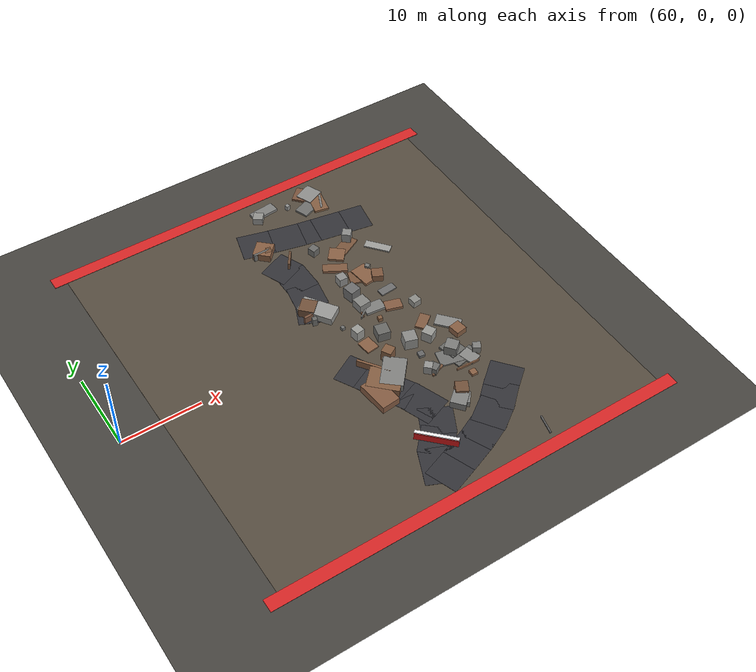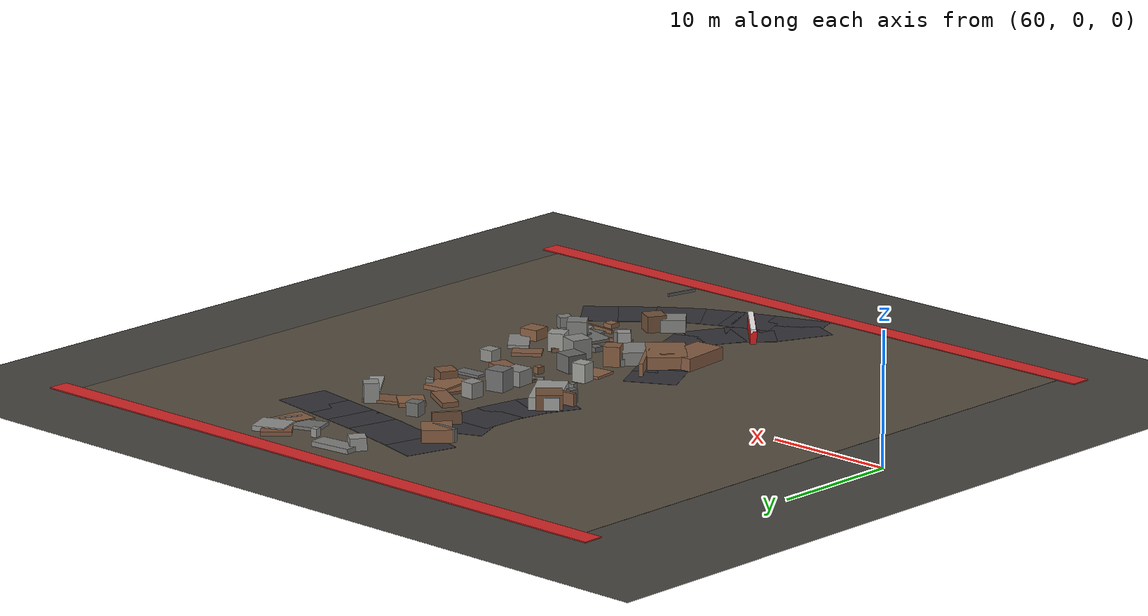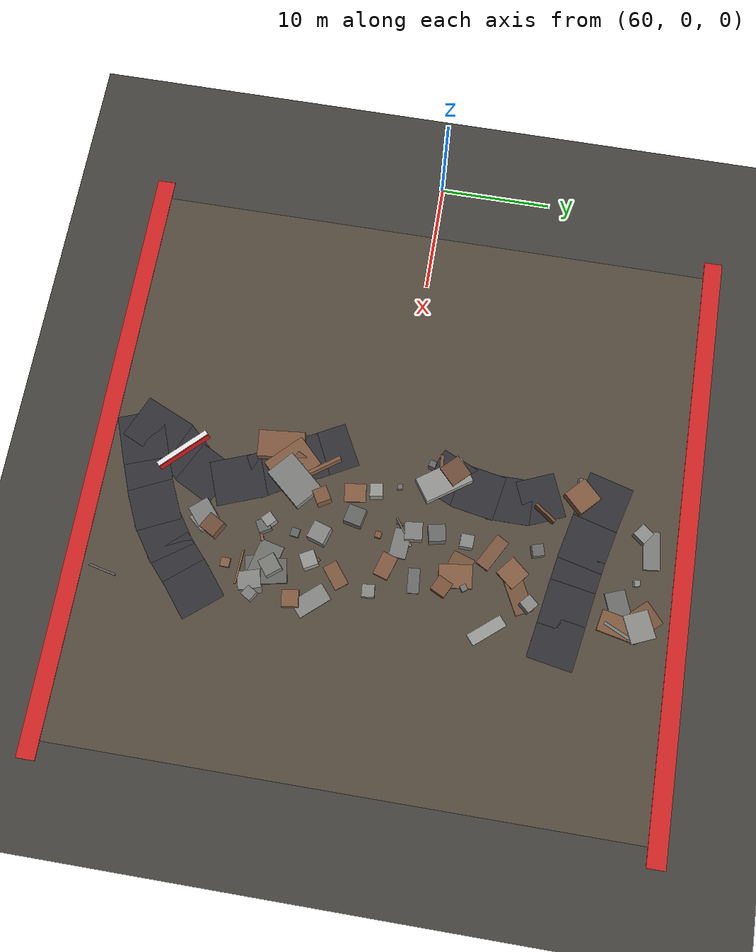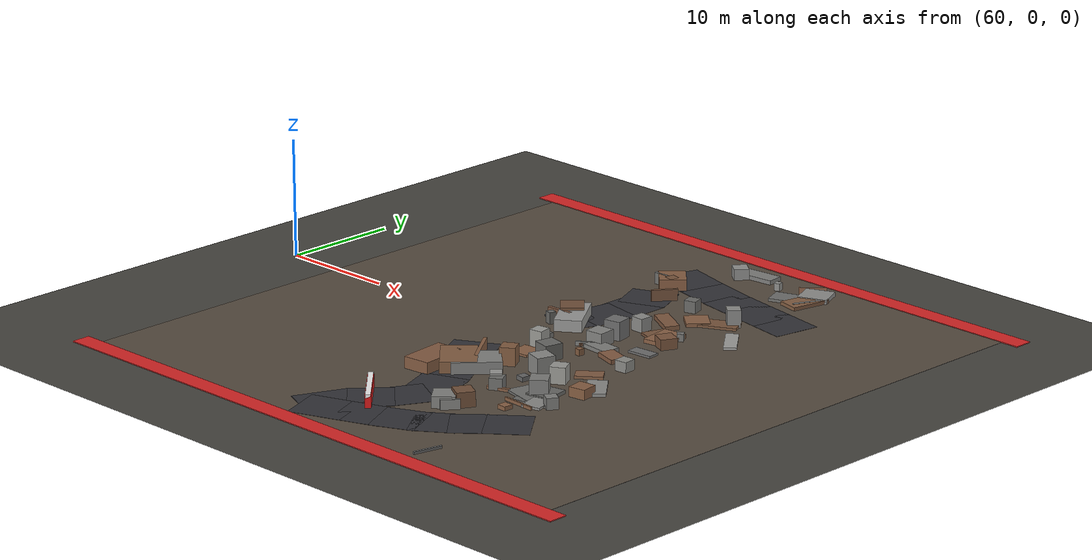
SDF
<sdf version="1.6">
 <world name="navitas_arena">
  <model name="ground_plane">
   <static>true</static>
   <link name="link">
    <collision name="collision">
     <geometry><plane><normal>0 0 1</normal><size>400 400</size></plane></geometry>
     <surface><friction><ode><mu>0.820</mu><mu2>0.820</mu2></ode></friction></surface>
    </collision>
    <visual name="visual">
     <cast_shadows>false</cast_shadows>
     <geometry><plane><normal>0 0 1</normal><size>400 400</size></plane></geometry>
     <material><ambient>0.280 0.270 0.250 1</ambient><diffuse>0.280 0.270 0.250 1</diffuse></material>
    </visual>
   </link>
  </model>
  <model name="gd_zor">
   <static>true</static>
   <pose>90.000 0.000 0.010 0 0 0.000</pose>
   <link name="link">
    <collision name="col"><geometry><box><size>50.000 50.000 0.020</size></box></geometry></collision>
    <visual name="vis">
     <geometry><box><size>50.000 50.000 0.020</size></box></geometry>
     <material><ambient>0.34 0.30 0.25 1</ambient><diffuse>0.34 0.30 0.25 1</diffuse></material>
    </visual>
   </link>
  </model>
  <model name="brd_zor_N">
   <static>true</static>
   <pose>90.000 25.800 0.040 0 0 0.000</pose>
   <link name="link">
    <collision name="col"><geometry><box><size>53.200 1.600 0.080</size></box></geometry></collision>
    <visual name="vis">
     <geometry><box><size>53.200 1.600 0.080</size></box></geometry>
     <material><ambient>0.85 0.15 0.15 1</ambient><diffuse>0.85 0.15 0.15 1</diffuse></material>
    </visual>
   </link>
  </model>
  <model name="brd_zor_S">
   <static>true</static>
   <pose>90.000 -25.800 0.040 0 0 0.000</pose>
   <link name="link">
    <collision name="col"><geometry><box><size>53.200 1.600 0.080</size></box></geometry></collision>
    <visual name="vis">
     <geometry><box><size>53.200 1.600 0.080</size></box></geometry>
     <material><ambient>0.85 0.15 0.15 1</ambient><diffuse>0.85 0.15 0.15 1</diffuse></material>
    </visual>
   </link>
  </model>
  <model name="road_zor_2_0">
   <static>true</static>
   <pose>87.388 -21.250 0.040 0 0 1.162</pose>
   <link name="link">
    <collision name="col"><geometry><box><size>4.714 4.000 0.020</size></box></geometry></collision>
    <visual name="vis">
     <geometry><box><size>4.714 4.000 0.020</size></box></geometry>
     <material><ambient>0.20 0.20 0.22 1</ambient><diffuse>0.20 0.20 0.22 1</diffuse></material>
    </visual>
   </link>
  </model>
  <model name="road_zor_2_1">
   <static>true</static>
   <pose>89.083 -18.484 0.040 0 0 0.826</pose>
   <link name="link">
    <collision name="col"><geometry><box><size>3.663 4.000 0.020</size></box></geometry></collision>
    <visual name="vis">
     <geometry><box><size>3.663 4.000 0.020</size></box></geometry>
     <material><ambient>0.20 0.20 0.22 1</ambient><diffuse>0.20 0.20 0.22 1</diffuse></material>
    </visual>
   </link>
  </model>
  <model name="road_zor_2_2">
   <static>true</static>
   <pose>90.655 -16.234 0.040 0 0 1.096</pose>
   <link name="link">
    <collision name="col"><geometry><box><size>3.676 4.000 0.020</size></box></geometry></collision>
    <visual name="vis">
     <geometry><box><size>3.676 4.000 0.020</size></box></geometry>
     <material><ambient>0.20 0.20 0.22 1</ambient><diffuse>0.20 0.20 0.22 1</diffuse></material>
    </visual>
   </link>
  </model>
  <model name="road_zor_2_3">
   <static>true</static>
   <pose>90.652 -13.328 0.040 0 0 1.935</pose>
   <link name="link">
    <collision name="col"><geometry><box><size>4.479 4.000 0.020</size></box></geometry></collision>
    <visual name="vis">
     <geometry><box><size>4.479 4.000 0.020</size></box></geometry>
     <material><ambient>0.20 0.20 0.22 1</ambient><diffuse>0.20 0.20 0.22 1</diffuse></material>
    </visual>
   </link>
  </model>
  <model name="road_zor_2_4">
   <static>true</static>
   <pose>89.301 -10.426 0.040 0 0 2.096</pose>
   <link name="link">
    <collision name="col"><geometry><box><size>3.745 4.000 0.020</size></box></geometry></collision>
    <visual name="vis">
     <geometry><box><size>3.745 4.000 0.020</size></box></geometry>
     <material><ambient>0.20 0.20 0.22 1</ambient><diffuse>0.20 0.20 0.22 1</diffuse></material>
    </visual>
   </link>
  </model>
  <model name="road_zor_2_5">
   <static>true</static>
   <pose>88.001 -8.014 0.040 0 0 2.031</pose>
   <link name="link">
    <collision name="col"><geometry><box><size>3.537 4.000 0.020</size></box></geometry></collision>
    <visual name="vis">
     <geometry><box><size>3.537 4.000 0.020</size></box></geometry>
     <material><ambient>0.20 0.20 0.22 1</ambient><diffuse>0.20 0.20 0.22 1</diffuse></material>
    </visual>
   </link>
  </model>
  <model name="road_zor_2_6">
   <static>true</static>
   <pose>86.785 -5.667 0.040 0 0 2.066</pose>
   <link name="link">
    <collision name="col"><geometry><box><size>3.551 4.000 0.020</size></box></geometry></collision>
    <visual name="vis">
     <geometry><box><size>3.551 4.000 0.020</size></box></geometry>
     <material><ambient>0.20 0.20 0.22 1</ambient><diffuse>0.20 0.20 0.22 1</diffuse></material>
    </visual>
   </link>
  </model>
  <model name="road_zor_2_10">
   <static>true</static>
   <pose>87.604 4.833 0.040 0 0 1.163</pose>
   <link name="link">
    <collision name="col"><geometry><box><size>3.442 4.000 0.020</size></box></geometry></collision>
    <visual name="vis">
     <geometry><box><size>3.442 4.000 0.020</size></box></geometry>
     <material><ambient>0.20 0.20 0.22 1</ambient><diffuse>0.20 0.20 0.22 1</diffuse></material>
    </visual>
   </link>
  </model>
  <model name="road_zor_2_11">
   <static>true</static>
   <pose>88.367 7.460 0.040 0 0 1.395</pose>
   <link name="link">
    <collision name="col"><geometry><box><size>3.865 4.000 0.020</size></box></geometry></collision>
    <visual name="vis">
     <geometry><box><size>3.865 4.000 0.020</size></box></geometry>
     <material><ambient>0.20 0.20 0.22 1</ambient><diffuse>0.20 0.20 0.22 1</diffuse></material>
    </visual>
   </link>
  </model>
  <model name="road_zor_2_12">
   <static>true</static>
   <pose>88.623 10.340 0.040 0 0 1.572</pose>
   <link name="link">
    <collision name="col"><geometry><box><size>3.740 4.000 0.020</size></box></geometry></collision>
    <visual name="vis">
     <geometry><box><size>3.740 4.000 0.020</size></box></geometry>
     <material><ambient>0.20 0.20 0.22 1</ambient><diffuse>0.20 0.20 0.22 1</diffuse></material>
    </visual>
   </link>
  </model>
  <model name="road_zor_2_13">
   <static>true</static>
   <pose>88.135 12.918 0.040 0 0 1.969</pose>
   <link name="link">
    <collision name="col"><geometry><box><size>3.412 4.000 0.020</size></box></geometry></collision>
    <visual name="vis">
     <geometry><box><size>3.412 4.000 0.020</size></box></geometry>
     <material><ambient>0.20 0.20 0.22 1</ambient><diffuse>0.20 0.20 0.22 1</diffuse></material>
    </visual>
   </link>
  </model>
  <model name="road_zor_3_0">
   <static>true</static>
   <pose>88.276 -22.399 0.040 0 0 0.350</pose>
   <link name="link">
    <collision name="col"><geometry><box><size>4.405 4.000 0.020</size></box></geometry></collision>
    <visual name="vis">
     <geometry><box><size>4.405 4.000 0.020</size></box></geometry>
     <material><ambient>0.20 0.20 0.22 1</ambient><diffuse>0.20 0.20 0.22 1</diffuse></material>
    </visual>
   </link>
  </model>
  <model name="road_zor_3_1">
   <static>true</static>
   <pose>91.378 -21.236 0.040 0 0 0.368</pose>
   <link name="link">
    <collision name="col"><geometry><box><size>4.020 4.000 0.020</size></box></geometry></collision>
    <visual name="vis">
     <geometry><box><size>4.020 4.000 0.020</size></box></geometry>
     <material><ambient>0.20 0.20 0.22 1</ambient><diffuse>0.20 0.20 0.22 1</diffuse></material>
    </visual>
   </link>
  </model>
  <model name="road_zor_3_2">
   <static>true</static>
   <pose>94.090 -20.087 0.040 0 0 0.437</pose>
   <link name="link">
    <collision name="col"><geometry><box><size>3.674 4.000 0.020</size></box></geometry></collision>
    <visual name="vis">
     <geometry><box><size>3.674 4.000 0.020</size></box></geometry>
     <material><ambient>0.20 0.20 0.22 1</ambient><diffuse>0.20 0.20 0.22 1</diffuse></material>
    </visual>
   </link>
  </model>
  <model name="road_zor_3_3">
   <static>true</static>
   <pose>96.500 -18.696 0.040 0 0 0.609</pose>
   <link name="link">
    <collision name="col"><geometry><box><size>3.713 4.000 0.020</size></box></geometry></collision>
    <visual name="vis">
     <geometry><box><size>3.713 4.000 0.020</size></box></geometry>
     <material><ambient>0.20 0.20 0.22 1</ambient><diffuse>0.20 0.20 0.22 1</diffuse></material>
    </visual>
   </link>
  </model>
  <model name="road_zor_3_4">
   <static>true</static>
   <pose>98.651 -16.984 0.040 0 0 0.739</pose>
   <link name="link">
    <collision name="col"><geometry><box><size>3.596 4.000 0.020</size></box></geometry></collision>
    <visual name="vis">
     <geometry><box><size>3.596 4.000 0.020</size></box></geometry>
     <material><ambient>0.20 0.20 0.22 1</ambient><diffuse>0.20 0.20 0.22 1</diffuse></material>
    </visual>
   </link>
  </model>
  <model name="road_zor_3_5">
   <static>true</static>
   <pose>100.713 -15.204 0.040 0 0 0.686</pose>
   <link name="link">
    <collision name="col"><geometry><box><size>3.654 4.000 0.020</size></box></geometry></collision>
    <visual name="vis">
     <geometry><box><size>3.654 4.000 0.020</size></box></geometry>
     <material><ambient>0.20 0.20 0.22 1</ambient><diffuse>0.20 0.20 0.22 1</diffuse></material>
    </visual>
   </link>
  </model>
  <model name="road_zor_3_22">
   <static>true</static>
   <pose>100.116 15.732 0.040 0 0 2.968</pose>
   <link name="link">
    <collision name="col"><geometry><box><size>3.954 4.000 0.020</size></box></geometry></collision>
    <visual name="vis">
     <geometry><box><size>3.954 4.000 0.020</size></box></geometry>
     <material><ambient>0.20 0.20 0.22 1</ambient><diffuse>0.20 0.20 0.22 1</diffuse></material>
    </visual>
   </link>
  </model>
  <model name="road_zor_3_23">
   <static>true</static>
   <pose>97.126 16.250 0.040 0 0 2.972</pose>
   <link name="link">
    <collision name="col"><geometry><box><size>3.914 4.000 0.020</size></box></geometry></collision>
    <visual name="vis">
     <geometry><box><size>3.914 4.000 0.020</size></box></geometry>
     <material><ambient>0.20 0.20 0.22 1</ambient><diffuse>0.20 0.20 0.22 1</diffuse></material>
    </visual>
   </link>
  </model>
  <model name="road_zor_3_24">
   <static>true</static>
   <pose>94.276 16.753 0.040 0 0 2.961</pose>
   <link name="link">
    <collision name="col"><geometry><box><size>3.675 4.000 0.020</size></box></geometry></collision>
    <visual name="vis">
     <geometry><box><size>3.675 4.000 0.020</size></box></geometry>
     <material><ambient>0.20 0.20 0.22 1</ambient><diffuse>0.20 0.20 0.22 1</diffuse></material>
    </visual>
   </link>
  </model>
  <model name="road_zor_3_25">
   <static>true</static>
   <pose>90.976 17.454 0.040 0 0 2.912</pose>
   <link name="link">
    <collision name="col"><geometry><box><size>4.876 4.000 0.020</size></box></geometry></collision>
    <visual name="vis">
     <geometry><box><size>4.876 4.000 0.020</size></box></geometry>
     <material><ambient>0.20 0.20 0.22 1</ambient><diffuse>0.20 0.20 0.22 1</diffuse></material>
    </visual>
   </link>
  </model>
  <model name="road_zor_3_26">
   <static>true</static>
   <pose>87.501 18.320 0.040 0 0 2.879</pose>
   <link name="link">
    <collision name="col"><geometry><box><size>4.087 4.000 0.020</size></box></geometry></collision>
    <visual name="vis">
     <geometry><box><size>4.087 4.000 0.020</size></box></geometry>
     <material><ambient>0.20 0.20 0.22 1</ambient><diffuse>0.20 0.20 0.22 1</diffuse></material>
    </visual>
   </link>
  </model>
  <model name="bar_zor_2">
   <static>true</static>
   <pose>88.969 -18.504 0.500 0 0 2.349</pose>
   <link name="link">
    <collision name="col"><geometry><box><size>5.000 0.500 1.000</size></box></geometry></collision>
    <visual name="vis">
     <geometry><box><size>5.000 0.500 1.000</size></box></geometry>
     <material><ambient>0.85 0.10 0.10 1</ambient><diffuse>0.85 0.10 0.10 1</diffuse></material>
    </visual>
   </link>
  </model>
  <model name="bar_zor_2b">
   <static>true</static>
   <pose>88.969 -18.504 1.000 0 0 2.349</pose>
   <link name="link">
    <collision name="col"><geometry><box><size>5.000 0.400 0.300</size></box></geometry></collision>
    <visual name="vis">
     <geometry><box><size>5.000 0.400 0.300</size></box></geometry>
     <material><ambient>0.95 0.95 0.95 1</ambient><diffuse>0.95 0.95 0.95 1</diffuse></material>
    </visual>
   </link>
  </model>
  <model name="blk_zor_2_0_0">
   <static>true</static>
   <pose>88.708 -6.496 0.500 0 0 2.193</pose>
   <link name="link">
    <collision name="col"><geometry><box><size>4.124 0.293 1.000</size></box></geometry></collision>
    <visual name="vis">
     <geometry><box><size>4.124 0.293 1.000</size></box></geometry>
     <material><ambient>0.53 0.37 0.26 1</ambient><diffuse>0.53 0.37 0.26 1</diffuse></material>
    </visual>
   </link>
  </model>
  <model name="blk_zor_2_0_1">
   <static>true</static>
   <pose>87.156 -10.124 0.500 0 0 1.669</pose>
   <link name="link">
    <collision name="col"><geometry><box><size>4.038 2.355 1.000</size></box></geometry></collision>
    <visual name="vis">
     <geometry><box><size>4.038 2.355 1.000</size></box></geometry>
     <material><ambient>0.52 0.36 0.26 1</ambient><diffuse>0.52 0.36 0.26 1</diffuse></material>
    </visual>
   </link>
  </model>
  <model name="blk_zor_2_0_2">
   <static>true</static>
   <pose>88.221 -8.277 0.500 0 0 1.086</pose>
   <link name="link">
    <collision name="col"><geometry><box><size>1.007 1.007 1.000</size></box></geometry></collision>
    <visual name="vis">
     <geometry><box><size>1.007 1.007 1.000</size></box></geometry>
     <material><ambient>0.47 0.33 0.24 1</ambient><diffuse>0.47 0.33 0.24 1</diffuse></material>
    </visual>
   </link>
  </model>
  <model name="blk_zor_2_0_4">
   <static>true</static>
   <pose>88.682 -8.815 0.500 0 0 2.360</pose>
   <link name="link">
    <collision name="col"><geometry><box><size>3.917 2.961 1.000</size></box></geometry></collision>
    <visual name="vis">
     <geometry><box><size>3.917 2.961 1.000</size></box></geometry>
     <material><ambient>0.52 0.37 0.26 1</ambient><diffuse>0.52 0.37 0.26 1</diffuse></material>
    </visual>
   </link>
  </model>
  <model name="blk_zor_2_0_5">
   <static>true</static>
   <pose>90.123 -8.393 0.500 0 0 0.860</pose>
   <link name="link">
    <collision name="col"><geometry><box><size>4.031 2.732 1.000</size></box></geometry></collision>
    <visual name="vis">
     <geometry><box><size>4.031 2.732 1.000</size></box></geometry>
     <material><ambient>0.51 0.51 0.50 1</ambient><diffuse>0.51 0.51 0.50 1</diffuse></material>
    </visual>
   </link>
  </model>
  <model name="blk_zor_2_1_0">
   <static>true</static>
   <pose>86.965 3.977 0.500 0 0 0.073</pose>
   <link name="link">
    <collision name="col"><geometry><box><size>2.289 0.299 1.000</size></box></geometry></collision>
    <visual name="vis">
     <geometry><box><size>2.289 0.299 1.000</size></box></geometry>
     <material><ambient>0.49 0.34 0.25 1</ambient><diffuse>0.49 0.34 0.25 1</diffuse></material>
    </visual>
   </link>
  </model>
  <model name="blk_zor_2_1_2">
   <static>true</static>
   <pose>87.992 4.382 0.500 0 0 2.177</pose>
   <link name="link">
    <collision name="col"><geometry><box><size>4.432 2.261 1.000</size></box></geometry></collision>
    <visual name="vis">
     <geometry><box><size>4.432 2.261 1.000</size></box></geometry>
     <material><ambient>0.60 0.60 0.59 1</ambient><diffuse>0.60 0.60 0.59 1</diffuse></material>
    </visual>
   </link>
  </model>
  <model name="blk_zor_2_1_3">
   <static>true</static>
   <pose>86.779 3.173 0.500 0 0 1.304</pose>
   <link name="link">
    <collision name="col"><geometry><box><size>0.591 0.591 1.000</size></box></geometry></collision>
    <visual name="vis">
     <geometry><box><size>0.591 0.591 1.000</size></box></geometry>
     <material><ambient>0.41 0.41 0.40 1</ambient><diffuse>0.41 0.41 0.40 1</diffuse></material>
    </visual>
   </link>
  </model>
  <model name="blk_zor_2_1_5">
   <static>true</static>
   <pose>87.123 5.221 0.588 0 0 2.346</pose>
   <link name="link">
    <collision name="col"><geometry><box><size>1.936 1.936 1.175</size></box></geometry></collision>
    <visual name="vis">
     <geometry><box><size>1.936 1.936 1.175</size></box></geometry>
     <material><ambient>0.45 0.32 0.23 1</ambient><diffuse>0.45 0.32 0.23 1</diffuse></material>
    </visual>
   </link>
  </model>
  <model name="blk_zor_2_2_0">
   <static>true</static>
   <pose>89.451 13.382 0.500 0 0 0.956</pose>
   <link name="link">
    <collision name="col"><geometry><box><size>2.170 0.260 1.000</size></box></geometry></collision>
    <visual name="vis">
     <geometry><box><size>2.170 0.260 1.000</size></box></geometry>
     <material><ambient>0.45 0.32 0.23 1</ambient><diffuse>0.45 0.32 0.23 1</diffuse></material>
    </visual>
   </link>
  </model>
  <model name="blk_zor_2_2_2">
   <static>true</static>
   <pose>87.089 15.997 0.500 0 0 3.108</pose>
   <link name="link">
    <collision name="col"><geometry><box><size>2.279 0.272 1.000</size></box></geometry></collision>
    <visual name="vis">
     <geometry><box><size>2.279 0.272 1.000</size></box></geometry>
     <material><ambient>0.44 0.44 0.43 1</ambient><diffuse>0.44 0.44 0.43 1</diffuse></material>
    </visual>
   </link>
  </model>
  <model name="blk_zor_2_2_3">
   <static>true</static>
   <pose>87.500 16.364 0.500 0 0 0.802</pose>
   <link name="link">
    <collision name="col"><geometry><box><size>2.229 2.229 1.000</size></box></geometry></collision>
    <visual name="vis">
     <geometry><box><size>2.229 2.229 1.000</size></box></geometry>
     <material><ambient>0.53 0.37 0.26 1</ambient><diffuse>0.53 0.37 0.26 1</diffuse></material>
    </visual>
   </link>
  </model>
  <model name="blk_zor_2_2_4">
   <static>true</static>
   <pose>87.836 15.949 0.500 0 0 1.366</pose>
   <link name="link">
    <collision name="col"><geometry><box><size>0.851 0.851 1.000</size></box></geometry></collision>
    <visual name="vis">
     <geometry><box><size>0.851 0.851 1.000</size></box></geometry>
     <material><ambient>0.48 0.34 0.24 1</ambient><diffuse>0.48 0.34 0.24 1</diffuse></material>
    </visual>
   </link>
  </model>
  <model name="deb_zor_7">
   <static>true</static>
   <pose>96.589 20.634 0.134 0 0 0.360</pose>
   <link name="link">
    <collision name="col"><geometry><box><size>3.163 1.781 0.269</size></box></geometry></collision>
    <visual name="vis">
     <geometry><box><size>3.163 1.781 0.269</size></box></geometry>
     <material><ambient>0.44 0.44 0.43 1</ambient><diffuse>0.44 0.44 0.43 1</diffuse></material>
    </visual>
   </link>
  </model>
  <model name="deb_zor_18">
   <static>true</static>
   <pose>97.160 5.544 0.458 0 0 1.114</pose>
   <link name="link">
    <collision name="col"><geometry><box><size>1.382 1.382 0.916</size></box></geometry></collision>
    <visual name="vis">
     <geometry><box><size>1.382 1.382 0.916</size></box></geometry>
     <material><ambient>0.49 0.34 0.24 1</ambient><diffuse>0.49 0.34 0.24 1</diffuse></material>
    </visual>
   </link>
  </model>
  <model name="deb_zor_19">
   <static>true</static>
   <pose>100.113 9.849 0.109 0 0 2.262</pose>
   <link name="link">
    <collision name="col"><geometry><box><size>3.307 1.054 0.217</size></box></geometry></collision>
    <visual name="vis">
     <geometry><box><size>3.307 1.054 0.217</size></box></geometry>
     <material><ambient>0.62 0.62 0.61 1</ambient><diffuse>0.62 0.62 0.61 1</diffuse></material>
    </visual>
   </link>
  </model>
  <model name="deb_zor_20">
   <static>true</static>
   <pose>92.816 4.458 0.799 0 0 1.767</pose>
   <link name="link">
    <collision name="col"><geometry><box><size>1.453 1.453 1.598</size></box></geometry></collision>
    <visual name="vis">
     <geometry><box><size>1.453 1.453 1.598</size></box></geometry>
     <material><ambient>0.43 0.43 0.43 1</ambient><diffuse>0.43 0.43 0.43 1</diffuse></material>
    </visual>
   </link>
  </model>
  <model name="deb_zor_23">
   <static>true</static>
   <pose>100.361 -10.354 0.487 0 0 1.019</pose>
   <link name="link">
    <collision name="col"><geometry><box><size>0.955 0.955 0.974</size></box></geometry></collision>
    <visual name="vis">
     <geometry><box><size>0.955 0.955 0.974</size></box></geometry>
     <material><ambient>0.50 0.50 0.49 1</ambient><diffuse>0.50 0.50 0.49 1</diffuse></material>
    </visual>
   </link>
  </model>
  <model name="deb_zor_35">
   <static>true</static>
   <pose>94.988 11.348 0.164 0 0 0.874</pose>
   <link name="link">
    <collision name="col"><geometry><box><size>1.968 1.990 0.328</size></box></geometry></collision>
    <visual name="vis">
     <geometry><box><size>1.968 1.990 0.328</size></box></geometry>
     <material><ambient>0.54 0.38 0.27 1</ambient><diffuse>0.54 0.38 0.27 1</diffuse></material>
    </visual>
   </link>
  </model>
  <model name="deb_zor_43">
   <static>true</static>
   <pose>98.639 -10.390 0.100 0 0 0.204</pose>
   <link name="link">
    <collision name="col"><geometry><box><size>3.264 1.397 0.201</size></box></geometry></collision>
    <visual name="vis">
     <geometry><box><size>3.264 1.397 0.201</size></box></geometry>
     <material><ambient>0.41 0.41 0.40 1</ambient><diffuse>0.41 0.41 0.40 1</diffuse></material>
    </visual>
   </link>
  </model>
  <model name="deb_zor_47">
   <static>true</static>
   <pose>96.631 12.022 0.120 0 0 0.471</pose>
   <link name="link">
    <collision name="col"><geometry><box><size>3.467 1.602 0.240</size></box></geometry></collision>
    <visual name="vis">
     <geometry><box><size>3.467 1.602 0.240</size></box></geometry>
     <material><ambient>0.48 0.34 0.24 1</ambient><diffuse>0.48 0.34 0.24 1</diffuse></material>
    </visual>
   </link>
  </model>
  <model name="deb_zor_48">
   <static>true</static>
   <pose>97.285 -9.624 0.107 0 0 2.903</pose>
   <link name="link">
    <collision name="col"><geometry><box><size>3.143 2.109 0.214</size></box></geometry></collision>
    <visual name="vis">
     <geometry><box><size>3.143 2.109 0.214</size></box></geometry>
     <material><ambient>0.45 0.45 0.44 1</ambient><diffuse>0.45 0.45 0.44 1</diffuse></material>
    </visual>
   </link>
  </model>
  <model name="deb_zor_50">
   <static>true</static>
   <pose>93.427 1.924 0.086 0 0 0.648</pose>
   <link name="link">
    <collision name="col"><geometry><box><size>1.657 0.196 0.173</size></box></geometry></collision>
    <visual name="vis">
     <geometry><box><size>1.657 0.196 0.173</size></box></geometry>
     <material><ambient>0.58 0.58 0.57 1</ambient><diffuse>0.58 0.58 0.57 1</diffuse></material>
    </visual>
   </link>
  </model>
  <model name="deb_zor_52">
   <static>true</static>
   <pose>96.952 7.411 0.331 0 0 0.604</pose>
   <link name="link">
    <collision name="col"><geometry><box><size>0.538 0.538 0.662</size></box></geometry></collision>
    <visual name="vis">
     <geometry><box><size>0.538 0.538 0.662</size></box></geometry>
     <material><ambient>0.46 0.46 0.45 1</ambient><diffuse>0.46 0.46 0.45 1</diffuse></material>
    </visual>
   </link>
  </model>
  <model name="deb_zor_54">
   <static>true</static>
   <pose>96.622 -5.316 0.153 0 0 2.580</pose>
   <link name="link">
    <collision name="col"><geometry><box><size>0.522 0.522 0.306</size></box></geometry></collision>
    <visual name="vis">
     <geometry><box><size>0.522 0.522 0.306</size></box></geometry>
     <material><ambient>0.49 0.34 0.25 1</ambient><diffuse>0.49 0.34 0.25 1</diffuse></material>
    </visual>
   </link>
  </model>
  <model name="deb_zor_58">
   <static>true</static>
   <pose>97.784 -9.010 0.741 0 0 2.243</pose>
   <link name="link">
    <collision name="col"><geometry><box><size>1.485 1.485 1.482</size></box></geometry></collision>
    <visual name="vis">
     <geometry><box><size>1.485 1.485 1.482</size></box></geometry>
     <material><ambient>0.49 0.49 0.48 1</ambient><diffuse>0.49 0.49 0.48 1</diffuse></material>
    </visual>
   </link>
  </model>
  <model name="deb_zor_69">
   <static>true</static>
   <pose>96.983 3.134 0.105 0 0 0.081</pose>
   <link name="link">
    <collision name="col"><geometry><box><size>2.164 1.011 0.210</size></box></geometry></collision>
    <visual name="vis">
     <geometry><box><size>2.164 1.011 0.210</size></box></geometry>
     <material><ambient>0.43 0.43 0.43 1</ambient><diffuse>0.43 0.43 0.43 1</diffuse></material>
    </visual>
   </link>
  </model>
  <model name="deb_zor_83">
   <static>true</static>
   <pose>91.158 -5.784 0.767 0 0 0.538</pose>
   <link name="link">
    <collision name="col"><geometry><box><size>1.260 1.260 1.533</size></box></geometry></collision>
    <visual name="vis">
     <geometry><box><size>1.260 1.260 1.533</size></box></geometry>
     <material><ambient>0.51 0.36 0.25 1</ambient><diffuse>0.51 0.36 0.25 1</diffuse></material>
    </visual>
   </link>
  </model>
  <model name="deb_zor_84">
   <static>true</static>
   <pose>94.711 -15.567 0.422 0 0 2.448</pose>
   <link name="link">
    <collision name="col"><geometry><box><size>1.552 1.552 0.844</size></box></geometry></collision>
    <visual name="vis">
     <geometry><box><size>1.552 1.552 0.844</size></box></geometry>
     <material><ambient>0.51 0.51 0.50 1</ambient><diffuse>0.51 0.51 0.50 1</diffuse></material>
    </visual>
   </link>
  </model>
  <model name="deb_zor_87">
   <static>true</static>
   <pose>94.445 -10.256 0.494 0 0 0.506</pose>
   <link name="link">
    <collision name="col"><geometry><box><size>1.067 1.067 0.988</size></box></geometry></collision>
    <visual name="vis">
     <geometry><box><size>1.067 1.067 0.988</size></box></geometry>
     <material><ambient>0.43 0.43 0.42 1</ambient><diffuse>0.43 0.43 0.42 1</diffuse></material>
    </visual>
   </link>
  </model>
  <model name="deb_zor_88">
   <static>true</static>
   <pose>96.132 0.564 0.199 0 0 2.842</pose>
   <link name="link">
    <collision name="col"><geometry><box><size>2.094 1.359 0.397</size></box></geometry></collision>
    <visual name="vis">
     <geometry><box><size>2.094 1.359 0.397</size></box></geometry>
     <material><ambient>0.52 0.36 0.26 1</ambient><diffuse>0.52 0.36 0.26 1</diffuse></material>
    </visual>
   </link>
  </model>
  <model name="deb_zor_91">
   <static>true</static>
   <pose>94.542 -7.557 0.198 0 0 1.436</pose>
   <link name="link">
    <collision name="col"><geometry><box><size>0.737 0.737 0.397</size></box></geometry></collision>
    <visual name="vis">
     <geometry><box><size>0.737 0.737 0.397</size></box></geometry>
     <material><ambient>0.40 0.40 0.40 1</ambient><diffuse>0.40 0.40 0.40 1</diffuse></material>
    </visual>
   </link>
  </model>
  <model name="deb_zor_94">
   <static>true</static>
   <pose>100.217 -6.877 0.424 0 0 0.142</pose>
   <link name="link">
    <collision name="col"><geometry><box><size>1.438 1.438 0.849</size></box></geometry></collision>
    <visual name="vis">
     <geometry><box><size>1.438 1.438 0.849</size></box></geometry>
     <material><ambient>0.53 0.37 0.26 1</ambient><diffuse>0.53 0.37 0.26 1</diffuse></material>
    </visual>
   </link>
  </model>
  <model name="deb_zor_95">
   <static>true</static>
   <pose>89.928 -1.242 0.720 0 0 0.147</pose>
   <link name="link">
    <collision name="col"><geometry><box><size>1.117 1.117 1.440</size></box></geometry></collision>
    <visual name="vis">
     <geometry><box><size>1.117 1.117 1.440</size></box></geometry>
     <material><ambient>0.61 0.61 0.59 1</ambient><diffuse>0.61 0.61 0.59 1</diffuse></material>
    </visual>
   </link>
  </model>
  <model name="deb_zor_96">
   <static>true</static>
   <pose>100.361 -23.202 0.114 0 0 1.350</pose>
   <link name="link">
    <collision name="col"><geometry><box><size>2.443 0.174 0.227</size></box></geometry></collision>
    <visual name="vis">
     <geometry><box><size>2.443 0.174 0.227</size></box></geometry>
     <material><ambient>0.41 0.41 0.41 1</ambient><diffuse>0.41 0.41 0.41 1</diffuse></material>
    </visual>
   </link>
  </model>
  <model name="deb_zor_99">
   <static>true</static>
   <pose>92.480 1.325 0.186 0 0 0.623</pose>
   <link name="link">
    <collision name="col"><geometry><box><size>1.620 0.153 0.372</size></box></geometry></collision>
    <visual name="vis">
     <geometry><box><size>1.620 0.153 0.372</size></box></geometry>
     <material><ambient>0.49 0.49 0.48 1</ambient><diffuse>0.49 0.49 0.48 1</diffuse></material>
    </visual>
   </link>
  </model>
  <model name="deb_zor_111">
   <static>true</static>
   <pose>95.186 -14.546 0.637 0 0 2.631</pose>
   <link name="link">
    <collision name="col"><geometry><box><size>1.504 1.504 1.275</size></box></geometry></collision>
    <visual name="vis">
     <geometry><box><size>1.504 1.504 1.275</size></box></geometry>
     <material><ambient>0.45 0.32 0.23 1</ambient><diffuse>0.45 0.32 0.23 1</diffuse></material>
    </visual>
   </link>
  </model>
  <model name="deb_zor_112">
   <static>true</static>
   <pose>99.159 -10.700 0.109 0 0 1.848</pose>
   <link name="link">
    <collision name="col"><geometry><box><size>1.975 1.571 0.218</size></box></geometry></collision>
    <visual name="vis">
     <geometry><box><size>1.975 1.571 0.218</size></box></geometry>
     <material><ambient>0.54 0.54 0.53 1</ambient><diffuse>0.54 0.54 0.53 1</diffuse></material>
    </visual>
   </link>
  </model>
  <model name="deb_zor_117">
   <static>true</static>
   <pose>93.907 -9.883 0.571 0 0 2.371</pose>
   <link name="link">
    <collision name="col"><geometry><box><size>0.979 0.979 1.143</size></box></geometry></collision>
    <visual name="vis">
     <geometry><box><size>0.979 0.979 1.143</size></box></geometry>
     <material><ambient>0.59 0.59 0.58 1</ambient><diffuse>0.59 0.59 0.58 1</diffuse></material>
    </visual>
   </link>
  </model>
  <model name="deb_zor_118">
   <static>true</static>
   <pose>98.531 -0.502 0.451 0 0 0.087</pose>
   <link name="link">
    <collision name="col"><geometry><box><size>1.078 1.078 0.903</size></box></geometry></collision>
    <visual name="vis">
     <geometry><box><size>1.078 1.078 0.903</size></box></geometry>
     <material><ambient>0.55 0.55 0.53 1</ambient><diffuse>0.55 0.55 0.53 1</diffuse></material>
    </visual>
   </link>
  </model>
  <model name="deb_zor_120">
   <static>true</static>
   <pose>93.005 7.085 0.587 0 0 1.539</pose>
   <link name="link">
    <collision name="col"><geometry><box><size>1.131 1.131 1.175</size></box></geometry></collision>
    <visual name="vis">
     <geometry><box><size>1.131 1.131 1.175</size></box></geometry>
     <material><ambient>0.55 0.55 0.54 1</ambient><diffuse>0.55 0.55 0.54 1</diffuse></material>
    </visual>
   </link>
  </model>
  <model name="deb_zor_122">
   <static>true</static>
   <pose>91.155 22.795 0.192 0 0 0.100</pose>
   <link name="link">
    <collision name="col"><geometry><box><size>3.312 1.391 0.384</size></box></geometry></collision>
    <visual name="vis">
     <geometry><box><size>3.312 1.391 0.384</size></box></geometry>
     <material><ambient>0.50 0.50 0.49 1</ambient><diffuse>0.50 0.50 0.49 1</diffuse></material>
    </visual>
   </link>
  </model>
  <model name="deb_zor_123">
   <static>true</static>
   <pose>92.786 13.155 0.508 0 0 0.297</pose>
   <link name="link">
    <collision name="col"><geometry><box><size>1.011 1.011 1.016</size></box></geometry></collision>
    <visual name="vis">
     <geometry><box><size>1.011 1.011 1.016</size></box></geometry>
     <material><ambient>0.42 0.42 0.41 1</ambient><diffuse>0.42 0.42 0.41 1</diffuse></material>
    </visual>
   </link>
  </model>
  <model name="deb_zor_131">
   <static>true</static>
   <pose>93.528 9.416 0.197 0 0 2.633</pose>
   <link name="link">
    <collision name="col"><geometry><box><size>3.055 1.217 0.394</size></box></geometry></collision>
    <visual name="vis">
     <geometry><box><size>3.055 1.217 0.394</size></box></geometry>
     <material><ambient>0.50 0.35 0.25 1</ambient><diffuse>0.50 0.35 0.25 1</diffuse></material>
    </visual>
   </link>
  </model>
  <model name="deb_zor_135">
   <static>true</static>
   <pose>98.129 -8.747 0.158 0 0 1.777</pose>
   <link name="link">
    <collision name="col"><geometry><box><size>2.241 2.132 0.317</size></box></geometry></collision>
    <visual name="vis">
     <geometry><box><size>2.241 2.132 0.317</size></box></geometry>
     <material><ambient>0.41 0.41 0.40 1</ambient><diffuse>0.41 0.41 0.40 1</diffuse></material>
    </visual>
   </link>
  </model>
  <model name="deb_zor_137">
   <static>true</static>
   <pose>93.999 1.518 0.181 0 0 3.049</pose>
   <link name="link">
    <collision name="col"><geometry><box><size>2.514 1.483 0.362</size></box></geometry></collision>
    <visual name="vis">
     <geometry><box><size>2.514 1.483 0.362</size></box></geometry>
     <material><ambient>0.50 0.50 0.49 1</ambient><diffuse>0.50 0.50 0.49 1</diffuse></material>
    </visual>
   </link>
  </model>
  <model name="deb_zor_141">
   <static>true</static>
   <pose>94.162 21.820 0.327 0 0 1.803</pose>
   <link name="link">
    <collision name="col"><geometry><box><size>0.502 0.502 0.654</size></box></geometry></collision>
    <visual name="vis">
     <geometry><box><size>0.502 0.502 0.654</size></box></geometry>
     <material><ambient>0.56 0.56 0.55 1</ambient><diffuse>0.56 0.56 0.55 1</diffuse></material>
    </visual>
   </link>
  </model>
  <model name="deb_zor_152">
   <static>true</static>
   <pose>97.631 -3.467 0.133 0 0 0.669</pose>
   <link name="link">
    <collision name="col"><geometry><box><size>2.232 1.268 0.267</size></box></geometry></collision>
    <visual name="vis">
     <geometry><box><size>2.232 1.268 0.267</size></box></geometry>
     <material><ambient>0.51 0.36 0.26 1</ambient><diffuse>0.51 0.36 0.26 1</diffuse></material>
    </visual>
   </link>
  </model>
  <model name="deb_zor_156">
   <static>true</static>
   <pose>96.037 6.583 0.180 0 0 1.700</pose>
   <link name="link">
    <collision name="col"><geometry><box><size>2.876 2.060 0.359</size></box></geometry></collision>
    <visual name="vis">
     <geometry><box><size>2.876 2.060 0.359</size></box></geometry>
     <material><ambient>0.54 0.38 0.27 1</ambient><diffuse>0.54 0.38 0.27 1</diffuse></material>
    </visual>
   </link>
  </model>
  <model name="deb_zor_163">
   <static>true</static>
   <pose>96.783 -5.874 0.705 0 0 2.074</pose>
   <link name="link">
    <collision name="col"><geometry><box><size>1.296 1.296 1.411</size></box></geometry></collision>
    <visual name="vis">
     <geometry><box><size>1.296 1.296 1.411</size></box></geometry>
     <material><ambient>0.60 0.60 0.58 1</ambient><diffuse>0.60 0.60 0.58 1</diffuse></material>
    </visual>
   </link>
  </model>
  <model name="deb_zor_165">
   <static>true</static>
   <pose>98.042 -12.959 0.182 0 0 1.533</pose>
   <link name="link">
    <collision name="col"><geometry><box><size>0.783 0.783 0.363</size></box></geometry></collision>
    <visual name="vis">
     <geometry><box><size>0.783 0.783 0.363</size></box></geometry>
     <material><ambient>0.54 0.38 0.27 1</ambient><diffuse>0.54 0.38 0.27 1</diffuse></material>
    </visual>
   </link>
  </model>
  <model name="deb_zor_168">
   <static>true</static>
   <pose>89.100 0.678 0.210 0 0 0.126</pose>
   <link name="link">
    <collision name="col"><geometry><box><size>0.437 0.437 0.419</size></box></geometry></collision>
    <visual name="vis">
     <geometry><box><size>0.437 0.437 0.419</size></box></geometry>
     <material><ambient>0.45 0.45 0.44 1</ambient><diffuse>0.45 0.45 0.44 1</diffuse></material>
    </visual>
   </link>
  </model>
  <model name="deb_zor_176">
   <static>true</static>
   <pose>92.329 1.802 0.117 0 0 1.482</pose>
   <link name="link">
    <collision name="col"><geometry><box><size>1.779 0.173 0.233</size></box></geometry></collision>
    <visual name="vis">
     <geometry><box><size>1.779 0.173 0.233</size></box></geometry>
     <material><ambient>0.46 0.32 0.23 1</ambient><diffuse>0.46 0.32 0.23 1</diffuse></material>
    </visual>
   </link>
  </model>
  <model name="deb_zor_186">
   <static>true</static>
   <pose>98.214 -11.716 0.150 0 0 3.085</pose>
   <link name="link">
    <collision name="col"><geometry><box><size>2.975 0.155 0.300</size></box></geometry></collision>
    <visual name="vis">
     <geometry><box><size>2.975 0.155 0.300</size></box></geometry>
     <material><ambient>0.54 0.38 0.27 1</ambient><diffuse>0.54 0.38 0.27 1</diffuse></material>
    </visual>
   </link>
  </model>
  <model name="deb_zor_198">
   <static>true</static>
   <pose>95.283 6.741 0.113 0 0 2.822</pose>
   <link name="link">
    <collision name="col"><geometry><box><size>2.454 1.955 0.227</size></box></geometry></collision>
    <visual name="vis">
     <geometry><box><size>2.454 1.955 0.227</size></box></geometry>
     <material><ambient>0.48 0.34 0.24 1</ambient><diffuse>0.48 0.34 0.24 1</diffuse></material>
    </visual>
   </link>
  </model>
  <model name="deb_zor_199">
   <static>true</static>
   <pose>89.907 21.879 0.476 0 0 2.484</pose>
   <link name="link">
    <collision name="col"><geometry><box><size>1.235 1.235 0.952</size></box></geometry></collision>
    <visual name="vis">
     <geometry><box><size>1.235 1.235 0.952</size></box></geometry>
     <material><ambient>0.57 0.57 0.56 1</ambient><diffuse>0.57 0.57 0.56 1</diffuse></material>
    </visual>
   </link>
  </model>
  <model name="deb_zor_200">
   <static>true</static>
   <pose>98.362 20.608 0.165 0 0 1.140</pose>
   <link name="link">
    <collision name="col"><geometry><box><size>2.425 0.272 0.331</size></box></geometry></collision>
    <visual name="vis">
     <geometry><box><size>2.425 0.272 0.331</size></box></geometry>
     <material><ambient>0.50 0.50 0.49 1</ambient><diffuse>0.50 0.50 0.49 1</diffuse></material>
    </visual>
   </link>
  </model>
  <model name="deb_zor_201">
   <static>true</static>
   <pose>94.812 -10.513 0.130 0 0 0.361</pose>
   <link name="link">
    <collision name="col"><geometry><box><size>1.922 0.272 0.259</size></box></geometry></collision>
    <visual name="vis">
     <geometry><box><size>1.922 0.272 0.259</size></box></geometry>
     <material><ambient>0.51 0.36 0.26 1</ambient><diffuse>0.51 0.36 0.26 1</diffuse></material>
    </visual>
   </link>
  </model>
  <model name="deb_zor_202">
   <static>true</static>
   <pose>92.411 -2.676 0.664 0 0 2.931</pose>
   <link name="link">
    <collision name="col"><geometry><box><size>1.554 1.554 1.329</size></box></geometry></collision>
    <visual name="vis">
     <geometry><box><size>1.554 1.554 1.329</size></box></geometry>
     <material><ambient>0.41 0.41 0.40 1</ambient><diffuse>0.41 0.41 0.40 1</diffuse></material>
    </visual>
   </link>
  </model>
  <model name="deb_zor_205">
   <static>true</static>
   <pose>97.484 12.922 0.750 0 0 2.422</pose>
   <link name="link">
    <collision name="col"><geometry><box><size>1.119 1.119 1.501</size></box></geometry></collision>
    <visual name="vis">
     <geometry><box><size>1.119 1.119 1.501</size></box></geometry>
     <material><ambient>0.55 0.55 0.54 1</ambient><diffuse>0.55 0.55 0.54 1</diffuse></material>
    </visual>
   </link>
  </model>
  <model name="deb_zor_215">
   <static>true</static>
   <pose>98.004 20.800 0.159 0 0 1.368</pose>
   <link name="link">
    <collision name="col"><geometry><box><size>3.461 1.855 0.319</size></box></geometry></collision>
    <visual name="vis">
     <geometry><box><size>3.461 1.855 0.319</size></box></geometry>
     <material><ambient>0.52 0.37 0.26 1</ambient><diffuse>0.52 0.37 0.26 1</diffuse></material>
    </visual>
   </link>
  </model>
  <model name="deb_zor_217">
   <static>true</static>
   <pose>97.758 22.444 0.198 0 0 0.405</pose>
   <link name="link">
    <collision name="col"><geometry><box><size>2.464 2.175 0.396</size></box></geometry></collision>
    <visual name="vis">
     <geometry><box><size>2.464 2.175 0.396</size></box></geometry>
     <material><ambient>0.56 0.56 0.55 1</ambient><diffuse>0.56 0.56 0.55 1</diffuse></material>
    </visual>
   </link>
  </model>
  <model name="deb_zor_221">
   <static>true</static>
   <pose>92.894 2.469 0.583 0 0 1.670</pose>
   <link name="link">
    <collision name="col"><geometry><box><size>1.521 1.521 1.166</size></box></geometry></collision>
    <visual name="vis">
     <geometry><box><size>1.521 1.521 1.166</size></box></geometry>
     <material><ambient>0.52 0.52 0.51 1</ambient><diffuse>0.52 0.52 0.51 1</diffuse></material>
    </visual>
   </link>
  </model>
  <model name="deb_zor_222">
   <static>true</static>
   <pose>90.225 -3.066 0.103 0 0 1.697</pose>
   <link name="link">
    <collision name="col"><geometry><box><size>1.878 1.626 0.207</size></box></geometry></collision>
    <visual name="vis">
     <geometry><box><size>1.878 1.626 0.207</size></box></geometry>
     <material><ambient>0.54 0.38 0.27 1</ambient><diffuse>0.54 0.38 0.27 1</diffuse></material>
    </visual>
   </link>
  </model>
  <model name="deb_zor_225">
   <static>true</static>
   <pose>93.591 -0.474 0.275 0 0 2.978</pose>
   <link name="link">
    <collision name="col"><geometry><box><size>0.531 0.531 0.550</size></box></geometry></collision>
    <visual name="vis">
     <geometry><box><size>0.531 0.531 0.550</size></box></geometry>
     <material><ambient>0.51 0.36 0.25 1</ambient><diffuse>0.51 0.36 0.25 1</diffuse></material>
    </visual>
   </link>
  </model>
  <model name="deb_zor_229">
   <static>true</static>
   <pose>100.080 -5.165 0.137 0 0 2.287</pose>
   <link name="link">
    <collision name="col"><geometry><box><size>3.054 1.599 0.274</size></box></geometry></collision>
    <visual name="vis">
     <geometry><box><size>3.054 1.599 0.274</size></box></geometry>
     <material><ambient>0.54 0.54 0.53 1</ambient><diffuse>0.54 0.54 0.53 1</diffuse></material>
    </visual>
   </link>
  </model>
  <model name="deb_zor_234">
   <static>true</static>
   <pose>96.924 22.947 0.154 0 0 0.733</pose>
   <link name="link">
    <collision name="col"><geometry><box><size>2.233 1.908 0.308</size></box></geometry></collision>
    <visual name="vis">
     <geometry><box><size>2.233 1.908 0.308</size></box></geometry>
     <material><ambient>0.48 0.33 0.24 1</ambient><diffuse>0.48 0.33 0.24 1</diffuse></material>
    </visual>
   </link>
  </model>
  <model name="deb_zor_236">
   <static>true</static>
   <pose>90.665 -5.918 0.274 0 0 1.074</pose>
   <link name="link">
    <collision name="col"><geometry><box><size>0.655 0.655 0.547</size></box></geometry></collision>
    <visual name="vis">
     <geometry><box><size>0.655 0.655 0.547</size></box></geometry>
     <material><ambient>0.50 0.50 0.49 1</ambient><diffuse>0.50 0.50 0.49 1</diffuse></material>
    </visual>
   </link>
  </model>
  <model name="deb_zor_240">
   <static>true</static>
   <pose>94.397 -5.413 0.766 0 0 1.266</pose>
   <link name="link">
    <collision name="col"><geometry><box><size>1.567 1.567 1.533</size></box></geometry></collision>
    <visual name="vis">
     <geometry><box><size>1.567 1.567 1.533</size></box></geometry>
     <material><ambient>0.54 0.54 0.53 1</ambient><diffuse>0.54 0.54 0.53 1</diffuse></material>
    </visual>
   </link>
  </model>
  <model name="chic_zor_0">
   <static>true</static>
   <pose>94.176 -15.578 0.501 0 0 2.276</pose>
   <link name="link">
    <collision name="col"><geometry><box><size>1.838 1.838 1.001</size></box></geometry></collision>
    <visual name="vis">
     <geometry><box><size>1.838 1.838 1.001</size></box></geometry>
     <material><ambient>0.51 0.51 0.50 1</ambient><diffuse>0.51 0.51 0.50 1</diffuse></material>
    </visual>
   </link>
  </model>
  <model name="rec_cam">
   <static>true</static>
   <pose>90.000 0.000 72 0 1.5708 1.5708</pose>
   <link name="link">
    <sensor name="cam" type="camera">
     <camera>
      <horizontal_fov>1.25</horizontal_fov>
      <image><width>1280</width><height>720</height><format>R8G8B8</format></image>
      <clip><near>0.1</near><far>200</far></clip>
      <save enabled="true"><path>/tmp/frames</path></save>
     </camera>
     <always_on>1</always_on>
     <update_rate>30</update_rate>
    </sensor>
   </link>
  </model>
 </world>
</sdf>
